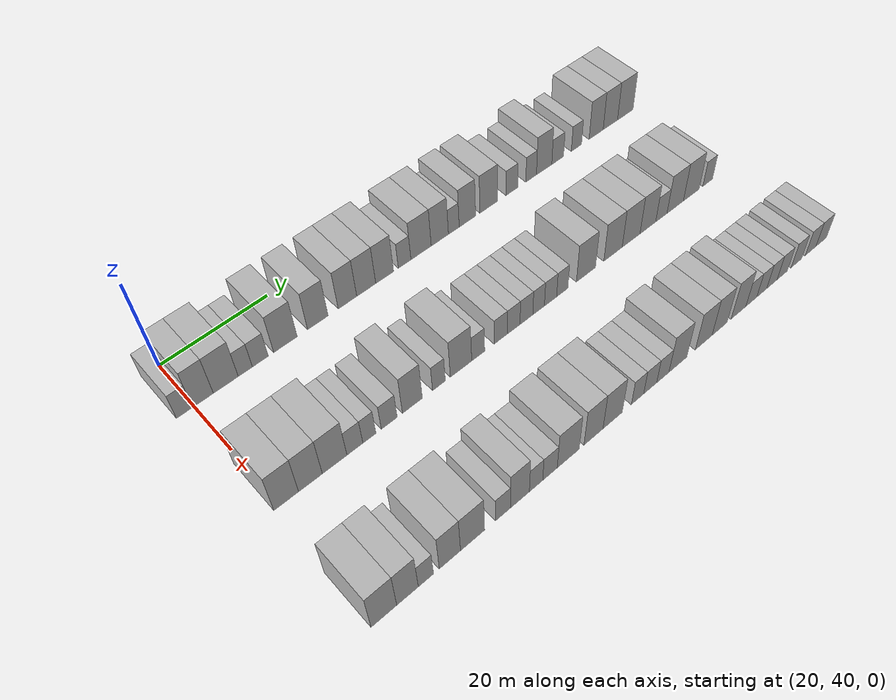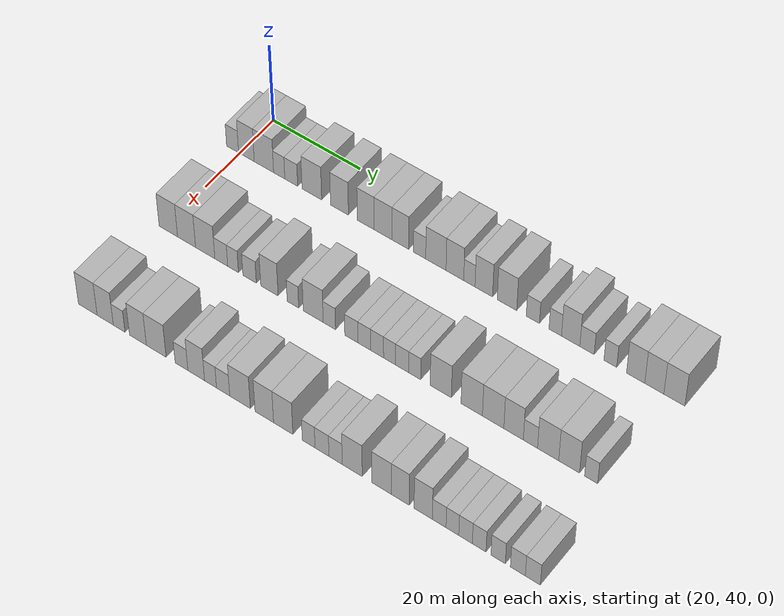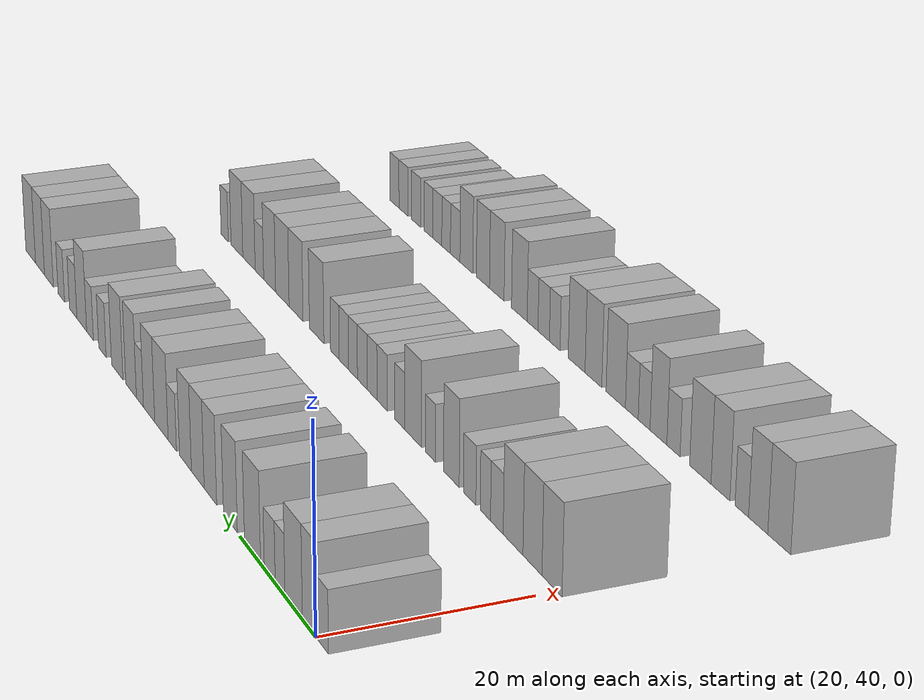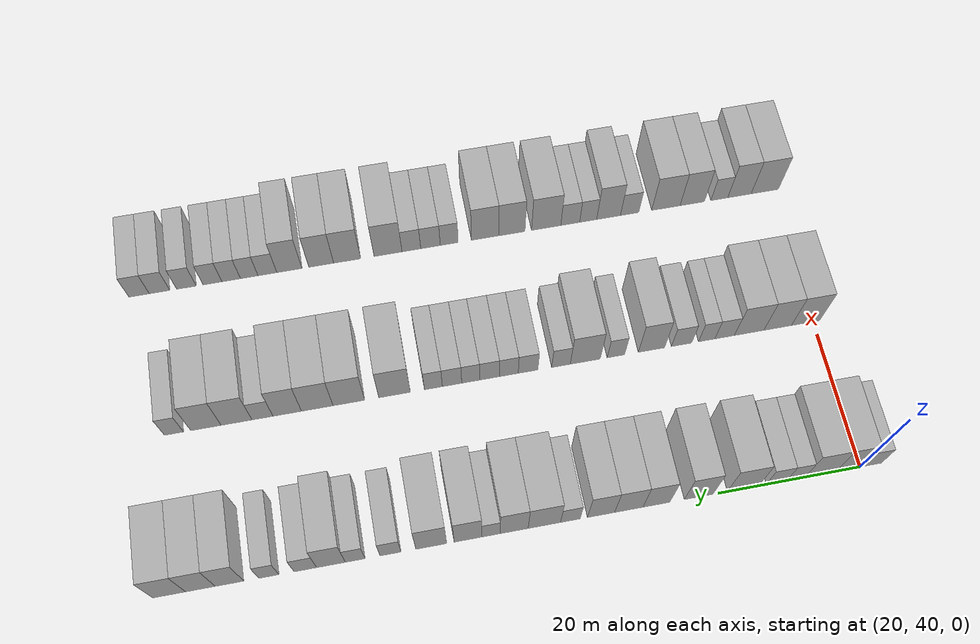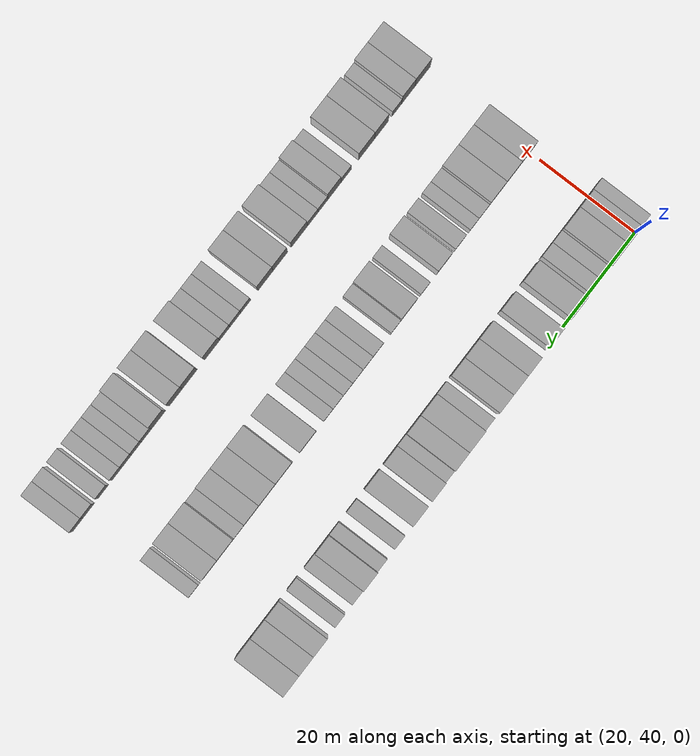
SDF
<sdf version="1.6">
 <world name="default">
  <model name="building_76">
   <static>1</static>
   <pose>25.0000 38.3679 0 0.000000 0.000000 0.000000</pose>
   <link name="link">
    <pose>0 0 3.00 0 0 0</pose>
    <collision name="collision"><geometry><box><size>10.0000 2.7649 6.0000</size></box></geometry></collision>
    <visual name="visual">
     <cast_shadows>0</cast_shadows>
     <geometry><box><size>10.0000 2.7649 6.0000</size></box></geometry>
     <material>
      <script>
       <uri>model://HANNAS_wall/materials/scripts</uri>
       <uri>model://HANNAS_wall/materials/textures</uri>
       <name>vrc/HANNAS_wall</name>
      </script>
     </material>
    </visual>
   </link>
  </model>
  <model name="building_77">
   <static>1</static>
   <pose>25.0000 41.5709 0 0.000000 0.000000 0.000000</pose>
   <link name="link">
    <pose>0 0 4.50 0 0 0</pose>
    <collision name="collision"><geometry><box><size>10.0000 3.6411 9.0000</size></box></geometry></collision>
    <visual name="visual">
     <cast_shadows>0</cast_shadows>
     <geometry><box><size>10.0000 3.6411 9.0000</size></box></geometry>
     <material>
      <script>
       <uri>model://HANNAS_wall/materials/scripts</uri>
       <uri>model://HANNAS_wall/materials/textures</uri>
       <name>vrc/HANNAS_wall</name>
      </script>
     </material>
    </visual>
   </link>
  </model>
  <model name="building_78">
   <static>1</static>
   <pose>25.0000 45.6113 0 0.000000 0.000000 0.000000</pose>
   <link name="link">
    <pose>0 0 4.50 0 0 0</pose>
    <collision name="collision"><geometry><box><size>10.0000 4.4396 9.0000</size></box></geometry></collision>
    <visual name="visual">
     <cast_shadows>0</cast_shadows>
     <geometry><box><size>10.0000 4.4396 9.0000</size></box></geometry>
     <material>
      <script>
       <uri>model://HANNAS_wall/materials/scripts</uri>
       <uri>model://HANNAS_wall/materials/textures</uri>
       <name>vrc/HANNAS_wall</name>
      </script>
     </material>
    </visual>
   </link>
  </model>
  <model name="building_79">
   <static>1</static>
   <pose>25.0000 49.1122 0 0.000000 0.000000 0.000000</pose>
   <link name="link">
    <pose>0 0 3.00 0 0 0</pose>
    <collision name="collision"><geometry><box><size>10.0000 2.5622 6.0000</size></box></geometry></collision>
    <visual name="visual">
     <cast_shadows>0</cast_shadows>
     <geometry><box><size>10.0000 2.5622 6.0000</size></box></geometry>
     <material>
      <script>
       <uri>model://HANNAS_wall/materials/scripts</uri>
       <uri>model://HANNAS_wall/materials/textures</uri>
       <name>vrc/HANNAS_wall</name>
      </script>
     </material>
    </visual>
   </link>
  </model>
  <model name="building_80">
   <static>1</static>
   <pose>25.0000 51.8571 0 0.000000 0.000000 0.000000</pose>
   <link name="link">
    <pose>0 0 3.00 0 0 0</pose>
    <collision name="collision"><geometry><box><size>10.0000 2.9275 6.0000</size></box></geometry></collision>
    <visual name="visual">
     <cast_shadows>0</cast_shadows>
     <geometry><box><size>10.0000 2.9275 6.0000</size></box></geometry>
     <material>
      <script>
       <uri>model://HANNAS_wall/materials/scripts</uri>
       <uri>model://HANNAS_wall/materials/textures</uri>
       <name>vrc/HANNAS_wall</name>
      </script>
     </material>
    </visual>
   </link>
  </model>
  <model name="building_81">
   <static>1</static>
   <pose>25.0000 56.5417 0 0.000000 0.000000 0.000000</pose>
   <link name="link">
    <pose>0 0 4.50 0 0 0</pose>
    <collision name="collision"><geometry><box><size>10.0000 4.4417 9.0000</size></box></geometry></collision>
    <visual name="visual">
     <cast_shadows>0</cast_shadows>
     <geometry><box><size>10.0000 4.4417 9.0000</size></box></geometry>
     <material>
      <script>
       <uri>model://HANNAS_wall/materials/scripts</uri>
       <uri>model://HANNAS_wall/materials/textures</uri>
       <name>vrc/HANNAS_wall</name>
      </script>
     </material>
    </visual>
   </link>
  </model>
  <model name="building_82">
   <static>1</static>
   <pose>25.0000 62.7658 0 0.000000 0.000000 0.000000</pose>
   <link name="link">
    <pose>0 0 4.50 0 0 0</pose>
    <collision name="collision"><geometry><box><size>10.0000 4.0066 9.0000</size></box></geometry></collision>
    <visual name="visual">
     <cast_shadows>0</cast_shadows>
     <geometry><box><size>10.0000 4.0066 9.0000</size></box></geometry>
     <material>
      <script>
       <uri>model://HANNAS_wall/materials/scripts</uri>
       <uri>model://HANNAS_wall/materials/textures</uri>
       <name>vrc/HANNAS_wall</name>
      </script>
     </material>
    </visual>
   </link>
  </model>
  <model name="building_83">
   <static>1</static>
   <pose>25.0000 68.6392 0 0.000000 0.000000 0.000000</pose>
   <link name="link">
    <pose>0 0 4.50 0 0 0</pose>
    <collision name="collision"><geometry><box><size>10.0000 3.7401 9.0000</size></box></geometry></collision>
    <visual name="visual">
     <cast_shadows>0</cast_shadows>
     <geometry><box><size>10.0000 3.7401 9.0000</size></box></geometry>
     <material>
      <script>
       <uri>model://HANNAS_wall/materials/scripts</uri>
       <uri>model://HANNAS_wall/materials/textures</uri>
       <name>vrc/HANNAS_wall</name>
      </script>
     </material>
    </visual>
   </link>
  </model>
  <model name="building_84">
   <static>1</static>
   <pose>25.0000 72.4593 0 0.000000 0.000000 0.000000</pose>
   <link name="link">
    <pose>0 0 4.50 0 0 0</pose>
    <collision name="collision"><geometry><box><size>10.0000 3.9002 9.0000</size></box></geometry></collision>
    <visual name="visual">
     <cast_shadows>0</cast_shadows>
     <geometry><box><size>10.0000 3.9002 9.0000</size></box></geometry>
     <material>
      <script>
       <uri>model://HANNAS_wall/materials/scripts</uri>
       <uri>model://HANNAS_wall/materials/textures</uri>
       <name>vrc/HANNAS_wall</name>
      </script>
     </material>
    </visual>
   </link>
  </model>
  <model name="building_85">
   <static>1</static>
   <pose>25.0000 76.2775 0 0.000000 0.000000 0.000000</pose>
   <link name="link">
    <pose>0 0 4.50 0 0 0</pose>
    <collision name="collision"><geometry><box><size>10.0000 3.7361 9.0000</size></box></geometry></collision>
    <visual name="visual">
     <cast_shadows>0</cast_shadows>
     <geometry><box><size>10.0000 3.7361 9.0000</size></box></geometry>
     <material>
      <script>
       <uri>model://HANNAS_wall/materials/scripts</uri>
       <uri>model://HANNAS_wall/materials/textures</uri>
       <name>vrc/HANNAS_wall</name>
      </script>
     </material>
    </visual>
   </link>
  </model>
  <model name="building_86">
   <static>1</static>
   <pose>25.0000 80.4934 0 0.000000 0.000000 0.000000</pose>
   <link name="link">
    <pose>0 0 3.00 0 0 0</pose>
    <collision name="collision"><geometry><box><size>10.0000 2.6956 6.0000</size></box></geometry></collision>
    <visual name="visual">
     <cast_shadows>0</cast_shadows>
     <geometry><box><size>10.0000 2.6956 6.0000</size></box></geometry>
     <material>
      <script>
       <uri>model://HANNAS_wall/materials/scripts</uri>
       <uri>model://HANNAS_wall/materials/textures</uri>
       <name>vrc/HANNAS_wall</name>
      </script>
     </material>
    </visual>
   </link>
  </model>
  <model name="building_87">
   <static>1</static>
   <pose>25.0000 84.0499 0 0.000000 0.000000 0.000000</pose>
   <link name="link">
    <pose>0 0 4.50 0 0 0</pose>
    <collision name="collision"><geometry><box><size>10.0000 4.4173 9.0000</size></box></geometry></collision>
    <visual name="visual">
     <cast_shadows>0</cast_shadows>
     <geometry><box><size>10.0000 4.4173 9.0000</size></box></geometry>
     <material>
      <script>
       <uri>model://HANNAS_wall/materials/scripts</uri>
       <uri>model://HANNAS_wall/materials/textures</uri>
       <name>vrc/HANNAS_wall</name>
      </script>
     </material>
    </visual>
   </link>
  </model>
  <model name="building_88">
   <static>1</static>
   <pose>25.0000 88.1691 0 0.000000 0.000000 0.000000</pose>
   <link name="link">
    <pose>0 0 4.50 0 0 0</pose>
    <collision name="collision"><geometry><box><size>10.0000 3.8210 9.0000</size></box></geometry></collision>
    <visual name="visual">
     <cast_shadows>0</cast_shadows>
     <geometry><box><size>10.0000 3.8210 9.0000</size></box></geometry>
     <material>
      <script>
       <uri>model://HANNAS_wall/materials/scripts</uri>
       <uri>model://HANNAS_wall/materials/textures</uri>
       <name>vrc/HANNAS_wall</name>
      </script>
     </material>
    </visual>
   </link>
  </model>
  <model name="building_89">
   <static>1</static>
   <pose>25.0000 91.2960 0 0.000000 0.000000 0.000000</pose>
   <link name="link">
    <pose>0 0 3.00 0 0 0</pose>
    <collision name="collision"><geometry><box><size>10.0000 2.4328 6.0000</size></box></geometry></collision>
    <visual name="visual">
     <cast_shadows>0</cast_shadows>
     <geometry><box><size>10.0000 2.4328 6.0000</size></box></geometry>
     <material>
      <script>
       <uri>model://HANNAS_wall/materials/scripts</uri>
       <uri>model://HANNAS_wall/materials/textures</uri>
       <name>vrc/HANNAS_wall</name>
      </script>
     </material>
    </visual>
   </link>
  </model>
  <model name="building_90">
   <static>1</static>
   <pose>25.0000 94.3941 0 0.000000 0.000000 0.000000</pose>
   <link name="link">
    <pose>0 0 4.50 0 0 0</pose>
    <collision name="collision"><geometry><box><size>10.0000 3.7634 9.0000</size></box></geometry></collision>
    <visual name="visual">
     <cast_shadows>0</cast_shadows>
     <geometry><box><size>10.0000 3.7634 9.0000</size></box></geometry>
     <material>
      <script>
       <uri>model://HANNAS_wall/materials/scripts</uri>
       <uri>model://HANNAS_wall/materials/textures</uri>
       <name>vrc/HANNAS_wall</name>
      </script>
     </material>
    </visual>
   </link>
  </model>
  <model name="building_91">
   <static>1</static>
   <pose>25.0000 99.3492 0 0.000000 0.000000 0.000000</pose>
   <link name="link">
    <pose>0 0 4.50 0 0 0</pose>
    <collision name="collision"><geometry><box><size>10.0000 4.1468 9.0000</size></box></geometry></collision>
    <visual name="visual">
     <cast_shadows>0</cast_shadows>
     <geometry><box><size>10.0000 4.1468 9.0000</size></box></geometry>
     <material>
      <script>
       <uri>model://HANNAS_wall/materials/scripts</uri>
       <uri>model://HANNAS_wall/materials/textures</uri>
       <name>vrc/HANNAS_wall</name>
      </script>
     </material>
    </visual>
   </link>
  </model>
  <model name="building_92">
   <static>1</static>
   <pose>25.0000 104.8178 0 0.000000 0.000000 0.000000</pose>
   <link name="link">
    <pose>0 0 3.00 0 0 0</pose>
    <collision name="collision"><geometry><box><size>10.0000 2.7903 6.0000</size></box></geometry></collision>
    <visual name="visual">
     <cast_shadows>0</cast_shadows>
     <geometry><box><size>10.0000 2.7903 6.0000</size></box></geometry>
     <material>
      <script>
       <uri>model://HANNAS_wall/materials/scripts</uri>
       <uri>model://HANNAS_wall/materials/textures</uri>
       <name>vrc/HANNAS_wall</name>
      </script>
     </material>
    </visual>
   </link>
  </model>
  <model name="building_93">
   <static>1</static>
   <pose>25.0000 109.5246 0 0.000000 0.000000 0.000000</pose>
   <link name="link">
    <pose>0 0 3.00 0 0 0</pose>
    <collision name="collision"><geometry><box><size>10.0000 2.6234 6.0000</size></box></geometry></collision>
    <visual name="visual">
     <cast_shadows>0</cast_shadows>
     <geometry><box><size>10.0000 2.6234 6.0000</size></box></geometry>
     <material>
      <script>
       <uri>model://HANNAS_wall/materials/scripts</uri>
       <uri>model://HANNAS_wall/materials/textures</uri>
       <name>vrc/HANNAS_wall</name>
      </script>
     </material>
    </visual>
   </link>
  </model>
  <model name="building_94">
   <static>1</static>
   <pose>25.0000 112.7478 0 0.000000 0.000000 0.000000</pose>
   <link name="link">
    <pose>0 0 4.50 0 0 0</pose>
    <collision name="collision"><geometry><box><size>10.0000 3.8230 9.0000</size></box></geometry></collision>
    <visual name="visual">
     <cast_shadows>0</cast_shadows>
     <geometry><box><size>10.0000 3.8230 9.0000</size></box></geometry>
     <material>
      <script>
       <uri>model://HANNAS_wall/materials/scripts</uri>
       <uri>model://HANNAS_wall/materials/textures</uri>
       <name>vrc/HANNAS_wall</name>
      </script>
     </material>
    </visual>
   </link>
  </model>
  <model name="building_95">
   <static>1</static>
   <pose>25.0000 116.1501 0 0.000000 0.000000 0.000000</pose>
   <link name="link">
    <pose>0 0 3.00 0 0 0</pose>
    <collision name="collision"><geometry><box><size>10.0000 2.9815 6.0000</size></box></geometry></collision>
    <visual name="visual">
     <cast_shadows>0</cast_shadows>
     <geometry><box><size>10.0000 2.9815 6.0000</size></box></geometry>
     <material>
      <script>
       <uri>model://HANNAS_wall/materials/scripts</uri>
       <uri>model://HANNAS_wall/materials/textures</uri>
       <name>vrc/HANNAS_wall</name>
      </script>
     </material>
    </visual>
   </link>
  </model>
  <model name="building_96">
   <static>1</static>
   <pose>25.0000 120.9619 0 0.000000 0.000000 0.000000</pose>
   <link name="link">
    <pose>0 0 3.00 0 0 0</pose>
    <collision name="collision"><geometry><box><size>10.0000 2.6422 6.0000</size></box></geometry></collision>
    <visual name="visual">
     <cast_shadows>0</cast_shadows>
     <geometry><box><size>10.0000 2.6422 6.0000</size></box></geometry>
     <material>
      <script>
       <uri>model://HANNAS_wall/materials/scripts</uri>
       <uri>model://HANNAS_wall/materials/textures</uri>
       <name>vrc/HANNAS_wall</name>
      </script>
     </material>
    </visual>
   </link>
  </model>
  <model name="building_97">
   <static>1</static>
   <pose>25.0000 126.1494 0 0.000000 0.000000 0.000000</pose>
   <link name="link">
    <pose>0 0 4.50 0 0 0</pose>
    <collision name="collision"><geometry><box><size>10.0000 3.7326 9.0000</size></box></geometry></collision>
    <visual name="visual">
     <cast_shadows>0</cast_shadows>
     <geometry><box><size>10.0000 3.7326 9.0000</size></box></geometry>
     <material>
      <script>
       <uri>model://HANNAS_wall/materials/scripts</uri>
       <uri>model://HANNAS_wall/materials/textures</uri>
       <name>vrc/HANNAS_wall</name>
      </script>
     </material>
    </visual>
   </link>
  </model>
  <model name="building_98">
   <static>1</static>
   <pose>25.0000 129.9535 0 0.000000 0.000000 0.000000</pose>
   <link name="link">
    <pose>0 0 4.50 0 0 0</pose>
    <collision name="collision"><geometry><box><size>10.0000 3.8756 9.0000</size></box></geometry></collision>
    <visual name="visual">
     <cast_shadows>0</cast_shadows>
     <geometry><box><size>10.0000 3.8756 9.0000</size></box></geometry>
     <material>
      <script>
       <uri>model://HANNAS_wall/materials/scripts</uri>
       <uri>model://HANNAS_wall/materials/textures</uri>
       <name>vrc/HANNAS_wall</name>
      </script>
     </material>
    </visual>
   </link>
  </model>
  <model name="building_99">
   <static>1</static>
   <pose>25.0000 134.0172 0 0.000000 0.000000 0.000000</pose>
   <link name="link">
    <pose>0 0 4.50 0 0 0</pose>
    <collision name="collision"><geometry><box><size>10.0000 4.2518 9.0000</size></box></geometry></collision>
    <visual name="visual">
     <cast_shadows>0</cast_shadows>
     <geometry><box><size>10.0000 4.2518 9.0000</size></box></geometry>
     <material>
      <script>
       <uri>model://HANNAS_wall/materials/scripts</uri>
       <uri>model://HANNAS_wall/materials/textures</uri>
       <name>vrc/HANNAS_wall</name>
      </script>
     </material>
    </visual>
   </link>
  </model>
  <model name="building_198">
   <static>1</static>
   <pose>47.0000 41.1217 0 0.000000 0.000000 0.000000</pose>
   <link name="link">
    <pose>0 0 4.50 0 0 0</pose>
    <collision name="collision"><geometry><box><size>10.0000 4.2155 9.0000</size></box></geometry></collision>
    <visual name="visual">
     <cast_shadows>0</cast_shadows>
     <geometry><box><size>10.0000 4.2155 9.0000</size></box></geometry>
     <material>
      <script>
       <uri>model://HANNAS_wall/materials/scripts</uri>
       <uri>model://HANNAS_wall/materials/textures</uri>
       <name>vrc/HANNAS_wall</name>
      </script>
     </material>
    </visual>
   </link>
  </model>
  <model name="building_199">
   <static>1</static>
   <pose>47.0000 45.2830 0 0.000000 0.000000 0.000000</pose>
   <link name="link">
    <pose>0 0 4.50 0 0 0</pose>
    <collision name="collision"><geometry><box><size>10.0000 4.1071 9.0000</size></box></geometry></collision>
    <visual name="visual">
     <cast_shadows>0</cast_shadows>
     <geometry><box><size>10.0000 4.1071 9.0000</size></box></geometry>
     <material>
      <script>
       <uri>model://HANNAS_wall/materials/scripts</uri>
       <uri>model://HANNAS_wall/materials/textures</uri>
       <name>vrc/HANNAS_wall</name>
      </script>
     </material>
    </visual>
   </link>
  </model>
  <model name="building_200">
   <static>1</static>
   <pose>47.0000 49.5239 0 0.000000 0.000000 0.000000</pose>
   <link name="link">
    <pose>0 0 4.50 0 0 0</pose>
    <collision name="collision"><geometry><box><size>10.0000 4.3747 9.0000</size></box></geometry></collision>
    <visual name="visual">
     <cast_shadows>0</cast_shadows>
     <geometry><box><size>10.0000 4.3747 9.0000</size></box></geometry>
     <material>
      <script>
       <uri>model://HANNAS_wall/materials/scripts</uri>
       <uri>model://HANNAS_wall/materials/textures</uri>
       <name>vrc/HANNAS_wall</name>
      </script>
     </material>
    </visual>
   </link>
  </model>
  <model name="building_201">
   <static>1</static>
   <pose>47.0000 53.1585 0 0.000000 0.000000 0.000000</pose>
   <link name="link">
    <pose>0 0 3.00 0 0 0</pose>
    <collision name="collision"><geometry><box><size>10.0000 2.8946 6.0000</size></box></geometry></collision>
    <visual name="visual">
     <cast_shadows>0</cast_shadows>
     <geometry><box><size>10.0000 2.8946 6.0000</size></box></geometry>
     <material>
      <script>
       <uri>model://HANNAS_wall/materials/scripts</uri>
       <uri>model://HANNAS_wall/materials/textures</uri>
       <name>vrc/HANNAS_wall</name>
      </script>
     </material>
    </visual>
   </link>
  </model>
  <model name="building_202">
   <static>1</static>
   <pose>47.0000 55.8089 0 0.000000 0.000000 0.000000</pose>
   <link name="link">
    <pose>0 0 3.00 0 0 0</pose>
    <collision name="collision"><geometry><box><size>10.0000 2.4060 6.0000</size></box></geometry></collision>
    <visual name="visual">
     <cast_shadows>0</cast_shadows>
     <geometry><box><size>10.0000 2.4060 6.0000</size></box></geometry>
     <material>
      <script>
       <uri>model://HANNAS_wall/materials/scripts</uri>
       <uri>model://HANNAS_wall/materials/textures</uri>
       <name>vrc/HANNAS_wall</name>
      </script>
     </material>
    </visual>
   </link>
  </model>
  <model name="building_203">
   <static>1</static>
   <pose>47.0000 59.5060 0 0.000000 0.000000 0.000000</pose>
   <link name="link">
    <pose>0 0 3.00 0 0 0</pose>
    <collision name="collision"><geometry><box><size>10.0000 2.9882 6.0000</size></box></geometry></collision>
    <visual name="visual">
     <cast_shadows>0</cast_shadows>
     <geometry><box><size>10.0000 2.9882 6.0000</size></box></geometry>
     <material>
      <script>
       <uri>model://HANNAS_wall/materials/scripts</uri>
       <uri>model://HANNAS_wall/materials/textures</uri>
       <name>vrc/HANNAS_wall</name>
      </script>
     </material>
    </visual>
   </link>
  </model>
  <model name="building_204">
   <static>1</static>
   <pose>47.0000 63.9199 0 0.000000 0.000000 0.000000</pose>
   <link name="link">
    <pose>0 0 4.50 0 0 0</pose>
    <collision name="collision"><geometry><box><size>10.0000 3.8397 9.0000</size></box></geometry></collision>
    <visual name="visual">
     <cast_shadows>0</cast_shadows>
     <geometry><box><size>10.0000 3.8397 9.0000</size></box></geometry>
     <material>
      <script>
       <uri>model://HANNAS_wall/materials/scripts</uri>
       <uri>model://HANNAS_wall/materials/textures</uri>
       <name>vrc/HANNAS_wall</name>
      </script>
     </material>
    </visual>
   </link>
  </model>
  <model name="building_205">
   <static>1</static>
   <pose>47.0000 69.1114 0 0.000000 0.000000 0.000000</pose>
   <link name="link">
    <pose>0 0 3.00 0 0 0</pose>
    <collision name="collision"><geometry><box><size>10.0000 2.5434 6.0000</size></box></geometry></collision>
    <visual name="visual">
     <cast_shadows>0</cast_shadows>
     <geometry><box><size>10.0000 2.5434 6.0000</size></box></geometry>
     <material>
      <script>
       <uri>model://HANNAS_wall/materials/scripts</uri>
       <uri>model://HANNAS_wall/materials/textures</uri>
       <name>vrc/HANNAS_wall</name>
      </script>
     </material>
    </visual>
   </link>
  </model>
  <model name="building_206">
   <static>1</static>
   <pose>47.0000 73.5597 0 0.000000 0.000000 0.000000</pose>
   <link name="link">
    <pose>0 0 4.50 0 0 0</pose>
    <collision name="collision"><geometry><box><size>10.0000 4.3532 9.0000</size></box></geometry></collision>
    <visual name="visual">
     <cast_shadows>0</cast_shadows>
     <geometry><box><size>10.0000 4.3532 9.0000</size></box></geometry>
     <material>
      <script>
       <uri>model://HANNAS_wall/materials/scripts</uri>
       <uri>model://HANNAS_wall/materials/textures</uri>
       <name>vrc/HANNAS_wall</name>
      </script>
     </material>
    </visual>
   </link>
  </model>
  <model name="building_207">
   <static>1</static>
   <pose>47.0000 77.0814 0 0.000000 0.000000 0.000000</pose>
   <link name="link">
    <pose>0 0 3.00 0 0 0</pose>
    <collision name="collision"><geometry><box><size>10.0000 2.6901 6.0000</size></box></geometry></collision>
    <visual name="visual">
     <cast_shadows>0</cast_shadows>
     <geometry><box><size>10.0000 2.6901 6.0000</size></box></geometry>
     <material>
      <script>
       <uri>model://HANNAS_wall/materials/scripts</uri>
       <uri>model://HANNAS_wall/materials/textures</uri>
       <name>vrc/HANNAS_wall</name>
      </script>
     </material>
    </visual>
   </link>
  </model>
  <model name="building_208">
   <static>1</static>
   <pose>47.0000 81.8401 0 0.000000 0.000000 0.000000</pose>
   <link name="link">
    <pose>0 0 3.00 0 0 0</pose>
    <collision name="collision"><geometry><box><size>10.0000 2.8274 6.0000</size></box></geometry></collision>
    <visual name="visual">
     <cast_shadows>0</cast_shadows>
     <geometry><box><size>10.0000 2.8274 6.0000</size></box></geometry>
     <material>
      <script>
       <uri>model://HANNAS_wall/materials/scripts</uri>
       <uri>model://HANNAS_wall/materials/textures</uri>
       <name>vrc/HANNAS_wall</name>
      </script>
     </material>
    </visual>
   </link>
  </model>
  <model name="building_209">
   <static>1</static>
   <pose>47.0000 84.6065 0 0.000000 0.000000 0.000000</pose>
   <link name="link">
    <pose>0 0 3.00 0 0 0</pose>
    <collision name="collision"><geometry><box><size>10.0000 2.7054 6.0000</size></box></geometry></collision>
    <visual name="visual">
     <cast_shadows>0</cast_shadows>
     <geometry><box><size>10.0000 2.7054 6.0000</size></box></geometry>
     <material>
      <script>
       <uri>model://HANNAS_wall/materials/scripts</uri>
       <uri>model://HANNAS_wall/materials/textures</uri>
       <name>vrc/HANNAS_wall</name>
      </script>
     </material>
    </visual>
   </link>
  </model>
  <model name="building_210">
   <static>1</static>
   <pose>47.0000 87.3638 0 0.000000 0.000000 0.000000</pose>
   <link name="link">
    <pose>0 0 3.00 0 0 0</pose>
    <collision name="collision"><geometry><box><size>10.0000 2.8093 6.0000</size></box></geometry></collision>
    <visual name="visual">
     <cast_shadows>0</cast_shadows>
     <geometry><box><size>10.0000 2.8093 6.0000</size></box></geometry>
     <material>
      <script>
       <uri>model://HANNAS_wall/materials/scripts</uri>
       <uri>model://HANNAS_wall/materials/textures</uri>
       <name>vrc/HANNAS_wall</name>
      </script>
     </material>
    </visual>
   </link>
  </model>
  <model name="building_211">
   <static>1</static>
   <pose>47.0000 90.0542 0 0.000000 0.000000 0.000000</pose>
   <link name="link">
    <pose>0 0 3.00 0 0 0</pose>
    <collision name="collision"><geometry><box><size>10.0000 2.5715 6.0000</size></box></geometry></collision>
    <visual name="visual">
     <cast_shadows>0</cast_shadows>
     <geometry><box><size>10.0000 2.5715 6.0000</size></box></geometry>
     <material>
      <script>
       <uri>model://HANNAS_wall/materials/scripts</uri>
       <uri>model://HANNAS_wall/materials/textures</uri>
       <name>vrc/HANNAS_wall</name>
      </script>
     </material>
    </visual>
   </link>
  </model>
  <model name="building_212">
   <static>1</static>
   <pose>47.0000 92.7164 0 0.000000 0.000000 0.000000</pose>
   <link name="link">
    <pose>0 0 3.00 0 0 0</pose>
    <collision name="collision"><geometry><box><size>10.0000 2.7530 6.0000</size></box></geometry></collision>
    <visual name="visual">
     <cast_shadows>0</cast_shadows>
     <geometry><box><size>10.0000 2.7530 6.0000</size></box></geometry>
     <material>
      <script>
       <uri>model://HANNAS_wall/materials/scripts</uri>
       <uri>model://HANNAS_wall/materials/textures</uri>
       <name>vrc/HANNAS_wall</name>
      </script>
     </material>
    </visual>
   </link>
  </model>
  <model name="building_213">
   <static>1</static>
   <pose>47.0000 95.3705 0 0.000000 0.000000 0.000000</pose>
   <link name="link">
    <pose>0 0 3.00 0 0 0</pose>
    <collision name="collision"><geometry><box><size>10.0000 2.5551 6.0000</size></box></geometry></collision>
    <visual name="visual">
     <cast_shadows>0</cast_shadows>
     <geometry><box><size>10.0000 2.5551 6.0000</size></box></geometry>
     <material>
      <script>
       <uri>model://HANNAS_wall/materials/scripts</uri>
       <uri>model://HANNAS_wall/materials/textures</uri>
       <name>vrc/HANNAS_wall</name>
      </script>
     </material>
    </visual>
   </link>
  </model>
  <model name="building_214">
   <static>1</static>
   <pose>47.0000 100.8773 0 0.000000 0.000000 0.000000</pose>
   <link name="link">
    <pose>0 0 4.50 0 0 0</pose>
    <collision name="collision"><geometry><box><size>10.0000 4.4587 9.0000</size></box></geometry></collision>
    <visual name="visual">
     <cast_shadows>0</cast_shadows>
     <geometry><box><size>10.0000 4.4587 9.0000</size></box></geometry>
     <material>
      <script>
       <uri>model://HANNAS_wall/materials/scripts</uri>
       <uri>model://HANNAS_wall/materials/textures</uri>
       <name>vrc/HANNAS_wall</name>
      </script>
     </material>
    </visual>
   </link>
  </model>
  <model name="building_215">
   <static>1</static>
   <pose>47.0000 107.3339 0 0.000000 0.000000 0.000000</pose>
   <link name="link">
    <pose>0 0 4.50 0 0 0</pose>
    <collision name="collision"><geometry><box><size>10.0000 4.4544 9.0000</size></box></geometry></collision>
    <visual name="visual">
     <cast_shadows>0</cast_shadows>
     <geometry><box><size>10.0000 4.4544 9.0000</size></box></geometry>
     <material>
      <script>
       <uri>model://HANNAS_wall/materials/scripts</uri>
       <uri>model://HANNAS_wall/materials/textures</uri>
       <name>vrc/HANNAS_wall</name>
      </script>
     </material>
    </visual>
   </link>
  </model>
  <model name="building_216">
   <static>1</static>
   <pose>47.0000 111.7693 0 0.000000 0.000000 0.000000</pose>
   <link name="link">
    <pose>0 0 4.50 0 0 0</pose>
    <collision name="collision"><geometry><box><size>10.0000 4.4164 9.0000</size></box></geometry></collision>
    <visual name="visual">
     <cast_shadows>0</cast_shadows>
     <geometry><box><size>10.0000 4.4164 9.0000</size></box></geometry>
     <material>
      <script>
       <uri>model://HANNAS_wall/materials/scripts</uri>
       <uri>model://HANNAS_wall/materials/textures</uri>
       <name>vrc/HANNAS_wall</name>
      </script>
     </material>
    </visual>
   </link>
  </model>
  <model name="building_217">
   <static>1</static>
   <pose>47.0000 115.9719 0 0.000000 0.000000 0.000000</pose>
   <link name="link">
    <pose>0 0 4.50 0 0 0</pose>
    <collision name="collision"><geometry><box><size>10.0000 3.9889 9.0000</size></box></geometry></collision>
    <visual name="visual">
     <cast_shadows>0</cast_shadows>
     <geometry><box><size>10.0000 3.9889 9.0000</size></box></geometry>
     <material>
      <script>
       <uri>model://HANNAS_wall/materials/scripts</uri>
       <uri>model://HANNAS_wall/materials/textures</uri>
       <name>vrc/HANNAS_wall</name>
      </script>
     </material>
    </visual>
   </link>
  </model>
  <model name="building_218">
   <static>1</static>
   <pose>47.0000 119.4221 0 0.000000 0.000000 0.000000</pose>
   <link name="link">
    <pose>0 0 3.00 0 0 0</pose>
    <collision name="collision"><geometry><box><size>10.0000 2.9116 6.0000</size></box></geometry></collision>
    <visual name="visual">
     <cast_shadows>0</cast_shadows>
     <geometry><box><size>10.0000 2.9116 6.0000</size></box></geometry>
     <material>
      <script>
       <uri>model://HANNAS_wall/materials/scripts</uri>
       <uri>model://HANNAS_wall/materials/textures</uri>
       <name>vrc/HANNAS_wall</name>
      </script>
     </material>
    </visual>
   </link>
  </model>
  <model name="building_219">
   <static>1</static>
   <pose>47.0000 123.0238 0 0.000000 0.000000 0.000000</pose>
   <link name="link">
    <pose>0 0 4.50 0 0 0</pose>
    <collision name="collision"><geometry><box><size>10.0000 4.2919 9.0000</size></box></geometry></collision>
    <visual name="visual">
     <cast_shadows>0</cast_shadows>
     <geometry><box><size>10.0000 4.2919 9.0000</size></box></geometry>
     <material>
      <script>
       <uri>model://HANNAS_wall/materials/scripts</uri>
       <uri>model://HANNAS_wall/materials/textures</uri>
       <name>vrc/HANNAS_wall</name>
      </script>
     </material>
    </visual>
   </link>
  </model>
  <model name="building_220">
   <static>1</static>
   <pose>47.0000 127.2705 0 0.000000 0.000000 0.000000</pose>
   <link name="link">
    <pose>0 0 4.50 0 0 0</pose>
    <collision name="collision"><geometry><box><size>10.0000 4.2015 9.0000</size></box></geometry></collision>
    <visual name="visual">
     <cast_shadows>0</cast_shadows>
     <geometry><box><size>10.0000 4.2015 9.0000</size></box></geometry>
     <material>
      <script>
       <uri>model://HANNAS_wall/materials/scripts</uri>
       <uri>model://HANNAS_wall/materials/textures</uri>
       <name>vrc/HANNAS_wall</name>
      </script>
     </material>
    </visual>
   </link>
  </model>
  <model name="building_221">
   <static>1</static>
   <pose>47.0000 131.6841 0 0.000000 0.000000 0.000000</pose>
   <link name="link">
    <pose>0 0 3.00 0 0 0</pose>
    <collision name="collision"><geometry><box><size>10.0000 2.6257 6.0000</size></box></geometry></collision>
    <visual name="visual">
     <cast_shadows>0</cast_shadows>
     <geometry><box><size>10.0000 2.6257 6.0000</size></box></geometry>
     <material>
      <script>
       <uri>model://HANNAS_wall/materials/scripts</uri>
       <uri>model://HANNAS_wall/materials/textures</uri>
       <name>vrc/HANNAS_wall</name>
      </script>
     </material>
    </visual>
   </link>
  </model>
  <model name="building_317">
   <static>1</static>
   <pose>69.0000 40.8995 0 0.000000 0.000000 0.000000</pose>
   <link name="link">
    <pose>0 0 4.50 0 0 0</pose>
    <collision name="collision"><geometry><box><size>10.0000 4.2633 9.0000</size></box></geometry></collision>
    <visual name="visual">
     <cast_shadows>0</cast_shadows>
     <geometry><box><size>10.0000 4.2633 9.0000</size></box></geometry>
     <material>
      <script>
       <uri>model://HANNAS_wall/materials/scripts</uri>
       <uri>model://HANNAS_wall/materials/textures</uri>
       <name>vrc/HANNAS_wall</name>
      </script>
     </material>
    </visual>
   </link>
  </model>
  <model name="building_318">
   <static>1</static>
   <pose>69.0000 44.8545 0 0.000000 0.000000 0.000000</pose>
   <link name="link">
    <pose>0 0 4.50 0 0 0</pose>
    <collision name="collision"><geometry><box><size>10.0000 3.6468 9.0000</size></box></geometry></collision>
    <visual name="visual">
     <cast_shadows>0</cast_shadows>
     <geometry><box><size>10.0000 3.6468 9.0000</size></box></geometry>
     <material>
      <script>
       <uri>model://HANNAS_wall/materials/scripts</uri>
       <uri>model://HANNAS_wall/materials/textures</uri>
       <name>vrc/HANNAS_wall</name>
      </script>
     </material>
    </visual>
   </link>
  </model>
  <model name="building_319">
   <static>1</static>
   <pose>69.0000 47.9946 0 0.000000 0.000000 0.000000</pose>
   <link name="link">
    <pose>0 0 3.00 0 0 0</pose>
    <collision name="collision"><geometry><box><size>10.0000 2.6334 6.0000</size></box></geometry></collision>
    <visual name="visual">
     <cast_shadows>0</cast_shadows>
     <geometry><box><size>10.0000 2.6334 6.0000</size></box></geometry>
     <material>
      <script>
       <uri>model://HANNAS_wall/materials/scripts</uri>
       <uri>model://HANNAS_wall/materials/textures</uri>
       <name>vrc/HANNAS_wall</name>
      </script>
     </material>
    </visual>
   </link>
  </model>
  <model name="building_320">
   <static>1</static>
   <pose>69.0000 52.1998 0 0.000000 0.000000 0.000000</pose>
   <link name="link">
    <pose>0 0 4.50 0 0 0</pose>
    <collision name="collision"><geometry><box><size>10.0000 3.7771 9.0000</size></box></geometry></collision>
    <visual name="visual">
     <cast_shadows>0</cast_shadows>
     <geometry><box><size>10.0000 3.7771 9.0000</size></box></geometry>
     <material>
      <script>
       <uri>model://HANNAS_wall/materials/scripts</uri>
       <uri>model://HANNAS_wall/materials/textures</uri>
       <name>vrc/HANNAS_wall</name>
      </script>
     </material>
    </visual>
   </link>
  </model>
  <model name="building_321">
   <static>1</static>
   <pose>69.0000 56.2789 0 0.000000 0.000000 0.000000</pose>
   <link name="link">
    <pose>0 0 4.50 0 0 0</pose>
    <collision name="collision"><geometry><box><size>10.0000 4.3811 9.0000</size></box></geometry></collision>
    <visual name="visual">
     <cast_shadows>0</cast_shadows>
     <geometry><box><size>10.0000 4.3811 9.0000</size></box></geometry>
     <material>
      <script>
       <uri>model://HANNAS_wall/materials/scripts</uri>
       <uri>model://HANNAS_wall/materials/textures</uri>
       <name>vrc/HANNAS_wall</name>
      </script>
     </material>
    </visual>
   </link>
  </model>
  <model name="building_322">
   <static>1</static>
   <pose>69.0000 61.8760 0 0.000000 0.000000 0.000000</pose>
   <link name="link">
    <pose>0 0 3.00 0 0 0</pose>
    <collision name="collision"><geometry><box><size>10.0000 2.8130 6.0000</size></box></geometry></collision>
    <visual name="visual">
     <cast_shadows>0</cast_shadows>
     <geometry><box><size>10.0000 2.8130 6.0000</size></box></geometry>
     <material>
      <script>
       <uri>model://HANNAS_wall/materials/scripts</uri>
       <uri>model://HANNAS_wall/materials/textures</uri>
       <name>vrc/HANNAS_wall</name>
      </script>
     </material>
    </visual>
   </link>
  </model>
  <model name="building_323">
   <static>1</static>
   <pose>69.0000 65.1072 0 0.000000 0.000000 0.000000</pose>
   <link name="link">
    <pose>0 0 4.50 0 0 0</pose>
    <collision name="collision"><geometry><box><size>10.0000 3.6495 9.0000</size></box></geometry></collision>
    <visual name="visual">
     <cast_shadows>0</cast_shadows>
     <geometry><box><size>10.0000 3.6495 9.0000</size></box></geometry>
     <material>
      <script>
       <uri>model://HANNAS_wall/materials/scripts</uri>
       <uri>model://HANNAS_wall/materials/textures</uri>
       <name>vrc/HANNAS_wall</name>
      </script>
     </material>
    </visual>
   </link>
  </model>
  <model name="building_324">
   <static>1</static>
   <pose>69.0000 68.2366 0 0.000000 0.000000 0.000000</pose>
   <link name="link">
    <pose>0 0 3.00 0 0 0</pose>
    <collision name="collision"><geometry><box><size>10.0000 2.6093 6.0000</size></box></geometry></collision>
    <visual name="visual">
     <cast_shadows>0</cast_shadows>
     <geometry><box><size>10.0000 2.6093 6.0000</size></box></geometry>
     <material>
      <script>
       <uri>model://HANNAS_wall/materials/scripts</uri>
       <uri>model://HANNAS_wall/materials/textures</uri>
       <name>vrc/HANNAS_wall</name>
      </script>
     </material>
    </visual>
   </link>
  </model>
  <model name="building_325">
   <static>1</static>
   <pose>69.0000 70.9825 0 0.000000 0.000000 0.000000</pose>
   <link name="link">
    <pose>0 0 3.00 0 0 0</pose>
    <collision name="collision"><geometry><box><size>10.0000 2.8824 6.0000</size></box></geometry></collision>
    <visual name="visual">
     <cast_shadows>0</cast_shadows>
     <geometry><box><size>10.0000 2.8824 6.0000</size></box></geometry>
     <material>
      <script>
       <uri>model://HANNAS_wall/materials/scripts</uri>
       <uri>model://HANNAS_wall/materials/textures</uri>
       <name>vrc/HANNAS_wall</name>
      </script>
     </material>
    </visual>
   </link>
  </model>
  <model name="building_326">
   <static>1</static>
   <pose>69.0000 74.6498 0 0.000000 0.000000 0.000000</pose>
   <link name="link">
    <pose>0 0 4.50 0 0 0</pose>
    <collision name="collision"><geometry><box><size>10.0000 4.4521 9.0000</size></box></geometry></collision>
    <visual name="visual">
     <cast_shadows>0</cast_shadows>
     <geometry><box><size>10.0000 4.4521 9.0000</size></box></geometry>
     <material>
      <script>
       <uri>model://HANNAS_wall/materials/scripts</uri>
       <uri>model://HANNAS_wall/materials/textures</uri>
       <name>vrc/HANNAS_wall</name>
      </script>
     </material>
    </visual>
   </link>
  </model>
  <model name="building_327">
   <static>1</static>
   <pose>69.0000 79.8652 0 0.000000 0.000000 0.000000</pose>
   <link name="link">
    <pose>0 0 4.50 0 0 0</pose>
    <collision name="collision"><geometry><box><size>10.0000 3.9786 9.0000</size></box></geometry></collision>
    <visual name="visual">
     <cast_shadows>0</cast_shadows>
     <geometry><box><size>10.0000 3.9786 9.0000</size></box></geometry>
     <material>
      <script>
       <uri>model://HANNAS_wall/materials/scripts</uri>
       <uri>model://HANNAS_wall/materials/textures</uri>
       <name>vrc/HANNAS_wall</name>
      </script>
     </material>
    </visual>
   </link>
  </model>
  <model name="building_328">
   <static>1</static>
   <pose>69.0000 83.9092 0 0.000000 0.000000 0.000000</pose>
   <link name="link">
    <pose>0 0 4.50 0 0 0</pose>
    <collision name="collision"><geometry><box><size>10.0000 4.1094 9.0000</size></box></geometry></collision>
    <visual name="visual">
     <cast_shadows>0</cast_shadows>
     <geometry><box><size>10.0000 4.1094 9.0000</size></box></geometry>
     <material>
      <script>
       <uri>model://HANNAS_wall/materials/scripts</uri>
       <uri>model://HANNAS_wall/materials/textures</uri>
       <name>vrc/HANNAS_wall</name>
      </script>
     </material>
    </visual>
   </link>
  </model>
  <model name="building_329">
   <static>1</static>
   <pose>69.0000 89.3081 0 0.000000 0.000000 0.000000</pose>
   <link name="link">
    <pose>0 0 3.00 0 0 0</pose>
    <collision name="collision"><geometry><box><size>10.0000 2.6884 6.0000</size></box></geometry></collision>
    <visual name="visual">
     <cast_shadows>0</cast_shadows>
     <geometry><box><size>10.0000 2.6884 6.0000</size></box></geometry>
     <material>
      <script>
       <uri>model://HANNAS_wall/materials/scripts</uri>
       <uri>model://HANNAS_wall/materials/textures</uri>
       <name>vrc/HANNAS_wall</name>
      </script>
     </material>
    </visual>
   </link>
  </model>
  <model name="building_330">
   <static>1</static>
   <pose>69.0000 92.1135 0 0.000000 0.000000 0.000000</pose>
   <link name="link">
    <pose>0 0 3.00 0 0 0</pose>
    <collision name="collision"><geometry><box><size>10.0000 2.9225 6.0000</size></box></geometry></collision>
    <visual name="visual">
     <cast_shadows>0</cast_shadows>
     <geometry><box><size>10.0000 2.9225 6.0000</size></box></geometry>
     <material>
      <script>
       <uri>model://HANNAS_wall/materials/scripts</uri>
       <uri>model://HANNAS_wall/materials/textures</uri>
       <name>vrc/HANNAS_wall</name>
      </script>
     </material>
    </visual>
   </link>
  </model>
  <model name="building_331">
   <static>1</static>
   <pose>69.0000 94.9773 0 0.000000 0.000000 0.000000</pose>
   <link name="link">
    <pose>0 0 3.00 0 0 0</pose>
    <collision name="collision"><geometry><box><size>10.0000 2.8050 6.0000</size></box></geometry></collision>
    <visual name="visual">
     <cast_shadows>0</cast_shadows>
     <geometry><box><size>10.0000 2.8050 6.0000</size></box></geometry>
     <material>
      <script>
       <uri>model://HANNAS_wall/materials/scripts</uri>
       <uri>model://HANNAS_wall/materials/textures</uri>
       <name>vrc/HANNAS_wall</name>
      </script>
     </material>
    </visual>
   </link>
  </model>
  <model name="building_332">
   <static>1</static>
   <pose>69.0000 98.4592 0 0.000000 0.000000 0.000000</pose>
   <link name="link">
    <pose>0 0 4.50 0 0 0</pose>
    <collision name="collision"><geometry><box><size>10.0000 4.1588 9.0000</size></box></geometry></collision>
    <visual name="visual">
     <cast_shadows>0</cast_shadows>
     <geometry><box><size>10.0000 4.1588 9.0000</size></box></geometry>
     <material>
      <script>
       <uri>model://HANNAS_wall/materials/scripts</uri>
       <uri>model://HANNAS_wall/materials/textures</uri>
       <name>vrc/HANNAS_wall</name>
      </script>
     </material>
    </visual>
   </link>
  </model>
  <model name="building_333">
   <static>1</static>
   <pose>69.0000 104.5407 0 0.000000 0.000000 0.000000</pose>
   <link name="link">
    <pose>0 0 4.50 0 0 0</pose>
    <collision name="collision"><geometry><box><size>10.0000 4.0042 9.0000</size></box></geometry></collision>
    <visual name="visual">
     <cast_shadows>0</cast_shadows>
     <geometry><box><size>10.0000 4.0042 9.0000</size></box></geometry>
     <material>
      <script>
       <uri>model://HANNAS_wall/materials/scripts</uri>
       <uri>model://HANNAS_wall/materials/textures</uri>
       <name>vrc/HANNAS_wall</name>
      </script>
     </material>
    </visual>
   </link>
  </model>
  <model name="building_334">
   <static>1</static>
   <pose>69.0000 108.3794 0 0.000000 0.000000 0.000000</pose>
   <link name="link">
    <pose>0 0 4.50 0 0 0</pose>
    <collision name="collision"><geometry><box><size>10.0000 3.6732 9.0000</size></box></geometry></collision>
    <visual name="visual">
     <cast_shadows>0</cast_shadows>
     <geometry><box><size>10.0000 3.6732 9.0000</size></box></geometry>
     <material>
      <script>
       <uri>model://HANNAS_wall/materials/scripts</uri>
       <uri>model://HANNAS_wall/materials/textures</uri>
       <name>vrc/HANNAS_wall</name>
      </script>
     </material>
    </visual>
   </link>
  </model>
  <model name="building_335">
   <static>1</static>
   <pose>69.0000 113.0716 0 0.000000 0.000000 0.000000</pose>
   <link name="link">
    <pose>0 0 4.50 0 0 0</pose>
    <collision name="collision"><geometry><box><size>10.0000 3.7112 9.0000</size></box></geometry></collision>
    <visual name="visual">
     <cast_shadows>0</cast_shadows>
     <geometry><box><size>10.0000 3.7112 9.0000</size></box></geometry>
     <material>
      <script>
       <uri>model://HANNAS_wall/materials/scripts</uri>
       <uri>model://HANNAS_wall/materials/textures</uri>
       <name>vrc/HANNAS_wall</name>
      </script>
     </material>
    </visual>
   </link>
  </model>
  <model name="building_336">
   <static>1</static>
   <pose>69.0000 116.3137 0 0.000000 0.000000 0.000000</pose>
   <link name="link">
    <pose>0 0 3.00 0 0 0</pose>
    <collision name="collision"><geometry><box><size>10.0000 2.7730 6.0000</size></box></geometry></collision>
    <visual name="visual">
     <cast_shadows>0</cast_shadows>
     <geometry><box><size>10.0000 2.7730 6.0000</size></box></geometry>
     <material>
      <script>
       <uri>model://HANNAS_wall/materials/scripts</uri>
       <uri>model://HANNAS_wall/materials/textures</uri>
       <name>vrc/HANNAS_wall</name>
      </script>
     </material>
    </visual>
   </link>
  </model>
  <model name="building_337">
   <static>1</static>
   <pose>69.0000 118.9874 0 0.000000 0.000000 0.000000</pose>
   <link name="link">
    <pose>0 0 3.00 0 0 0</pose>
    <collision name="collision"><geometry><box><size>10.0000 2.5743 6.0000</size></box></geometry></collision>
    <visual name="visual">
     <cast_shadows>0</cast_shadows>
     <geometry><box><size>10.0000 2.5743 6.0000</size></box></geometry>
     <material>
      <script>
       <uri>model://HANNAS_wall/materials/scripts</uri>
       <uri>model://HANNAS_wall/materials/textures</uri>
       <name>vrc/HANNAS_wall</name>
      </script>
     </material>
    </visual>
   </link>
  </model>
  <model name="building_338">
   <static>1</static>
   <pose>69.0000 121.6354 0 0.000000 0.000000 0.000000</pose>
   <link name="link">
    <pose>0 0 3.00 0 0 0</pose>
    <collision name="collision"><geometry><box><size>10.0000 2.7218 6.0000</size></box></geometry></collision>
    <visual name="visual">
     <cast_shadows>0</cast_shadows>
     <geometry><box><size>10.0000 2.7218 6.0000</size></box></geometry>
     <material>
      <script>
       <uri>model://HANNAS_wall/materials/scripts</uri>
       <uri>model://HANNAS_wall/materials/textures</uri>
       <name>vrc/HANNAS_wall</name>
      </script>
     </material>
    </visual>
   </link>
  </model>
  <model name="building_339">
   <static>1</static>
   <pose>69.0000 124.3621 0 0.000000 0.000000 0.000000</pose>
   <link name="link">
    <pose>0 0 3.00 0 0 0</pose>
    <collision name="collision"><geometry><box><size>10.0000 2.7316 6.0000</size></box></geometry></collision>
    <visual name="visual">
     <cast_shadows>0</cast_shadows>
     <geometry><box><size>10.0000 2.7316 6.0000</size></box></geometry>
     <material>
      <script>
       <uri>model://HANNAS_wall/materials/scripts</uri>
       <uri>model://HANNAS_wall/materials/textures</uri>
       <name>vrc/HANNAS_wall</name>
      </script>
     </material>
    </visual>
   </link>
  </model>
  <model name="building_340">
   <static>1</static>
   <pose>69.0000 128.1516 0 0.000000 0.000000 0.000000</pose>
   <link name="link">
    <pose>0 0 3.00 0 0 0</pose>
    <collision name="collision"><geometry><box><size>10.0000 2.8475 6.0000</size></box></geometry></collision>
    <visual name="visual">
     <cast_shadows>0</cast_shadows>
     <geometry><box><size>10.0000 2.8475 6.0000</size></box></geometry>
     <material>
      <script>
       <uri>model://HANNAS_wall/materials/scripts</uri>
       <uri>model://HANNAS_wall/materials/textures</uri>
       <name>vrc/HANNAS_wall</name>
      </script>
     </material>
    </visual>
   </link>
  </model>
  <model name="building_341">
   <static>1</static>
   <pose>69.0000 132.0550 0 0.000000 0.000000 0.000000</pose>
   <link name="link">
    <pose>0 0 3.00 0 0 0</pose>
    <collision name="collision"><geometry><box><size>10.0000 2.9592 6.0000</size></box></geometry></collision>
    <visual name="visual">
     <cast_shadows>0</cast_shadows>
     <geometry><box><size>10.0000 2.9592 6.0000</size></box></geometry>
     <material>
      <script>
       <uri>model://HANNAS_wall/materials/scripts</uri>
       <uri>model://HANNAS_wall/materials/textures</uri>
       <name>vrc/HANNAS_wall</name>
      </script>
     </material>
    </visual>
   </link>
  </model>
  <model name="building_342">
   <static>1</static>
   <pose>69.0000 135.0100 0 0.000000 0.000000 0.000000</pose>
   <link name="link">
    <pose>0 0 3.00 0 0 0</pose>
    <collision name="collision"><geometry><box><size>10.0000 2.9507 6.0000</size></box></geometry></collision>
    <visual name="visual">
     <cast_shadows>0</cast_shadows>
     <geometry><box><size>10.0000 2.9507 6.0000</size></box></geometry>
     <material>
      <script>
       <uri>model://HANNAS_wall/materials/scripts</uri>
       <uri>model://HANNAS_wall/materials/textures</uri>
       <name>vrc/HANNAS_wall</name>
      </script>
     </material>
    </visual>
   </link>
  </model>
 </world>
</sdf>
